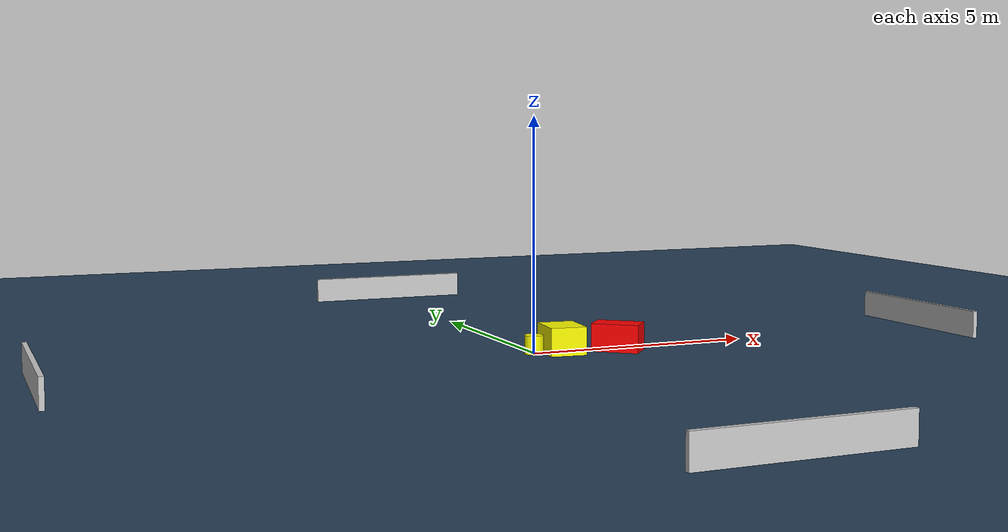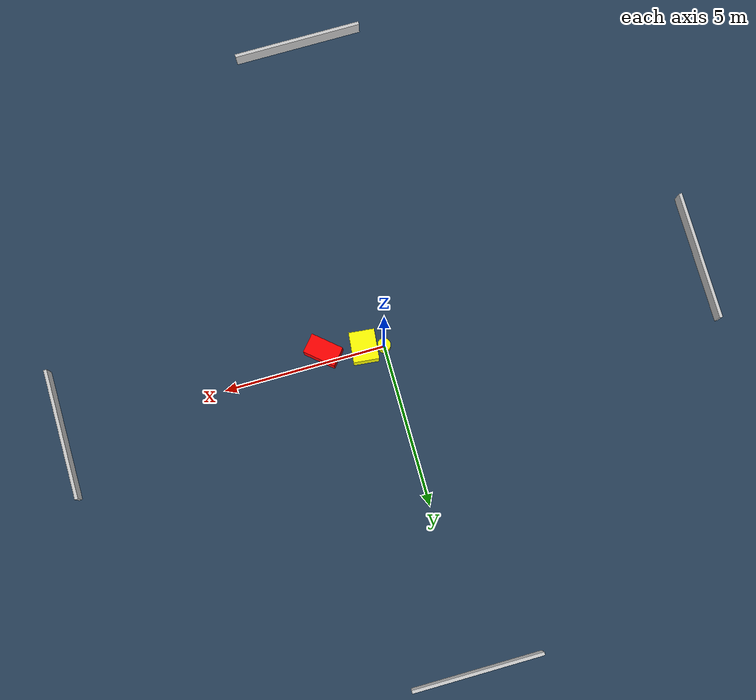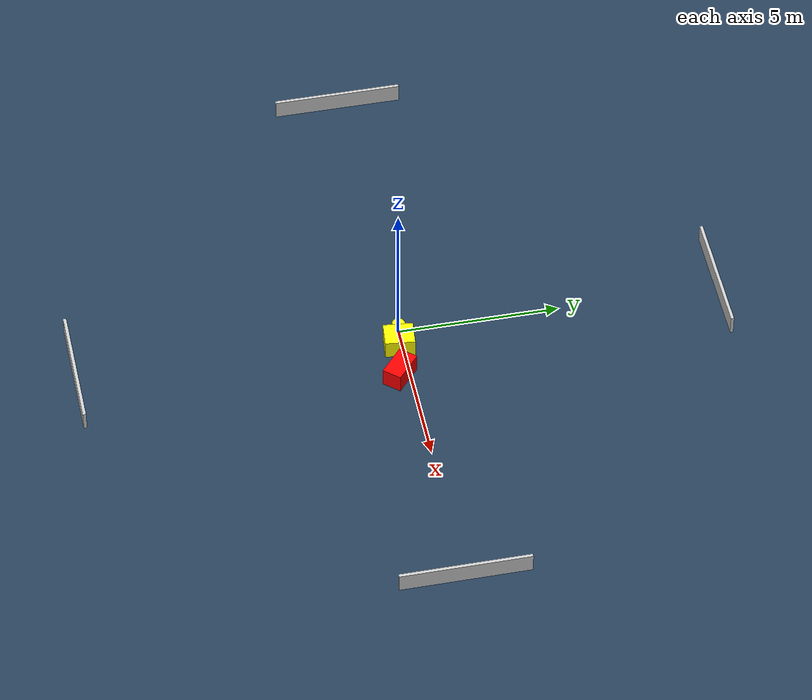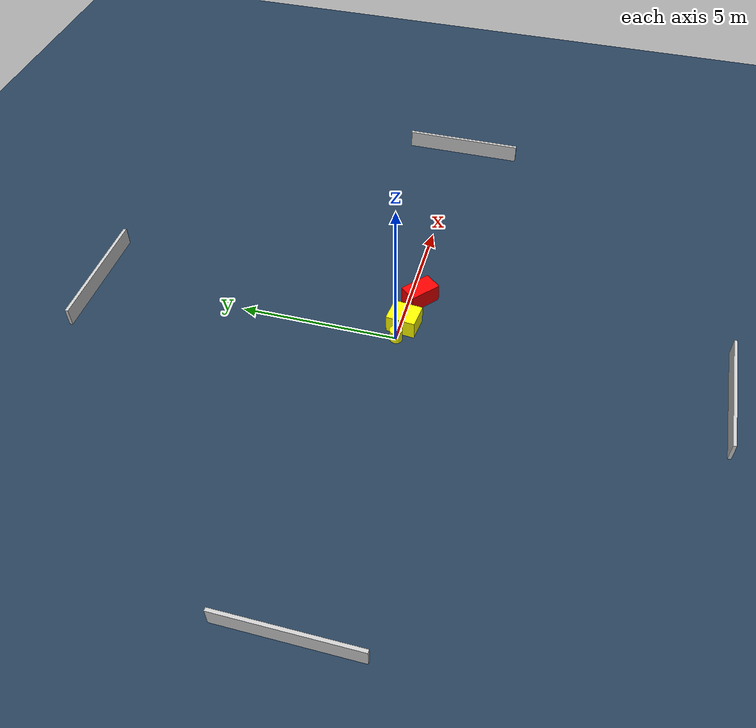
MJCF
<?xml version="1.0" ?>
<mujoco model="generated_environment">
  <option timestep="0.01" integrator="RK4" cone="elliptic"/>
  <default>
    <geom density="1"/>
  </default>
  <asset>
    <texture builtin="gradient" height="3072" name="skybox" rgb1="0.3 0.5 0.7" rgb2="0 0 0" type="skybox" width="512"/>
    <texture builtin="checker" height="300" name="groundplane" rgb1="0.2 0.3 0.4" rgb2="0.1 0.2 0.3" type="2d" width="300"/>
    <material name="groundplane" reflectance="0.2" texrepeat="5 5" texture="groundplane"/>
  </asset>
  <worldbody>
    <light dir="0 0 -1" directional="true" pos="0 0 1.5"/>
    <geom condim="3" friction="0.5 0.005 0.001" material="groundplane" name="floor" pos="0 0 0" size="0 0 0.05" type="plane"/>
    <body name="walls">
      <geom name="wall_1" condim="4" pos="-10.0 0.0 0.3" rgba="0.800000011920929 0.800000011920929 0.800000011920929 1.0" size="0.05 2.0 0.3" type="box"/>
      <geom name="wall_2" condim="4" pos="10.0 0.0 0.3" rgba="0.800000011920929 0.800000011920929 0.800000011920929 1.0" size="0.05 2.0 0.3" type="box"/>
      <geom name="wall_3" condim="4" pos="0.0 -10.0 0.3" rgba="0.800000011920929 0.800000011920929 0.800000011920929 1.0" size="2.0 0.05 0.3" type="box"/>
      <geom name="wall_4" condim="4" pos="0.0 10.0 0.3" rgba="0.800000011920929 0.800000011920929 0.800000011920929 1.0" size="2.0 0.05 0.3" type="box"/>
    </body>
    <body name="robot">
      <joint name="joint_x" type="slide" pos="0 0 0" axis="1 0 0"/>
      <joint name="joint_y" type="slide" pos="0 0 0" axis="0 1 0"/>
      <geom name="robot" type="cylinder" pos="0.0 0.0 0.2" size="0.2 0.2 0.0" mass="5.0" friction="1.0 0.005 0.0001" condim="4" rgba="1.0 1.0 0.0 1.0"/>
    </body>
    <body name="obstacle_1_movable">
      <geom name="obstacle_1_movable" condim="4" pos="0.6049031958415152 -0.10580051222204538 0.3" euler="0 0 174.14876788448214" friction="0.0 0.005 0.001" rgba="1.0 1.0 0.0 1.0" size="0.3917107001067962 0.46110033423111657 0.3" type="box" mass="0.1"/>
      <joint type="free"/>
    </body>
    <body name="obstacle_2_static">
      <geom name="obstacle_2_static" condim="4" pos="1.818304786571623 -0.317323622512323 0.3" euler="0 0 319.28837166565273" friction="0.0 0.005 0.001" rgba="1.0 0.0 0.0 1.0" size="0.5122298424684855 0.30458382739756046 0.3" type="box"/>
    </body>
  </worldbody>
  <actuator>
    <motor name="actuator_x" joint="joint_x" gear="1" ctrlrange="-1 1"/>
    <motor name="actuator_y" joint="joint_y" gear="1" ctrlrange="-1 1"/>
  </actuator>
</mujoco>
